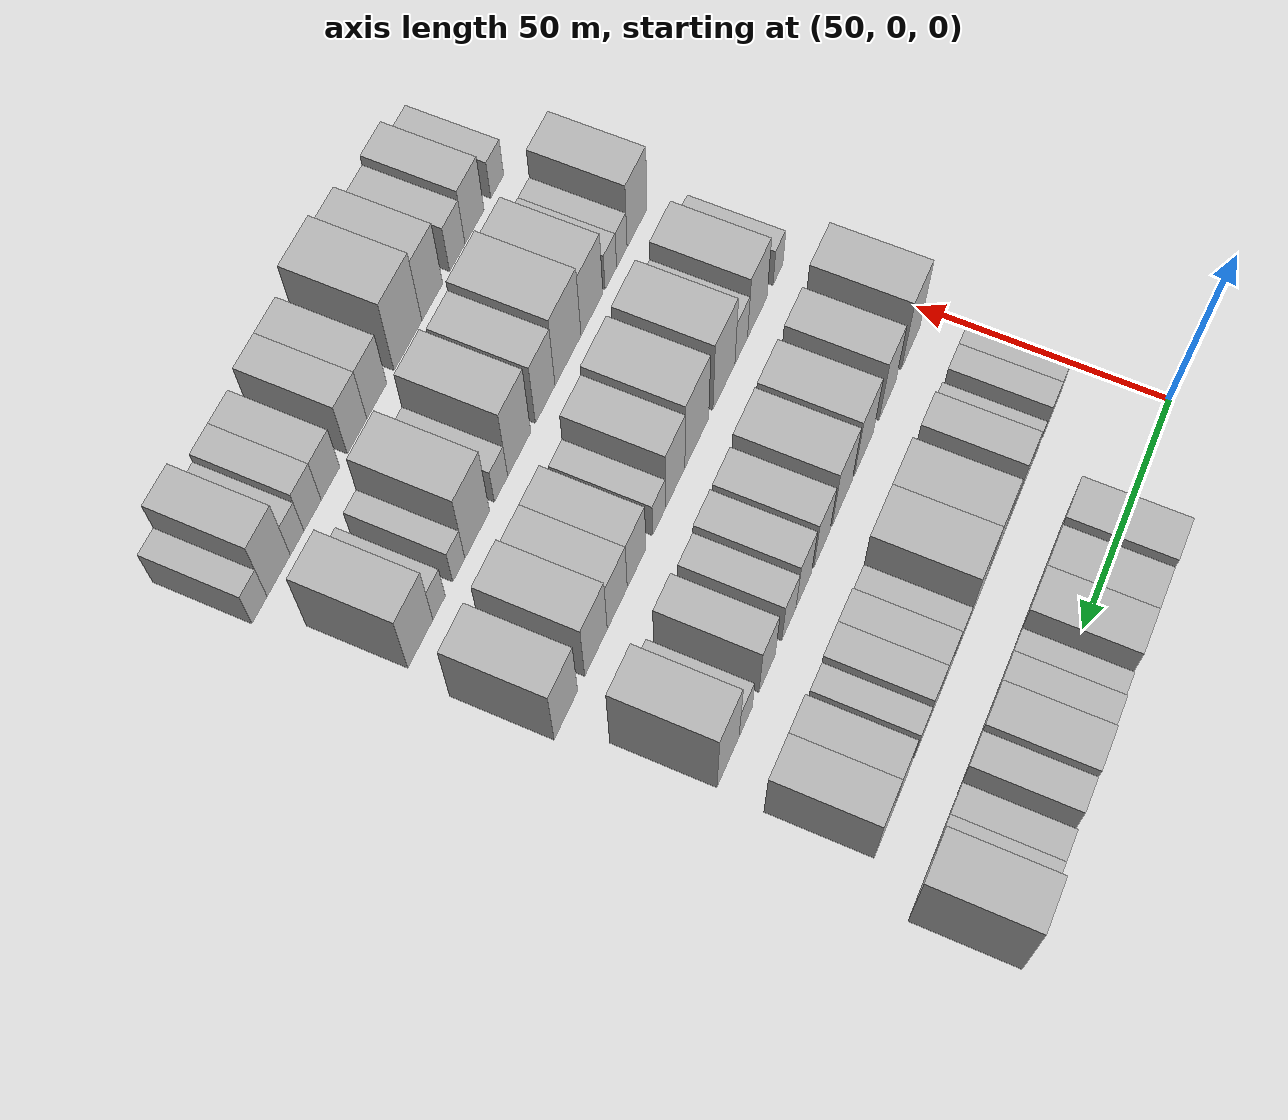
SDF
<sdf version="1.6">
 <world name="default">
  <model name="building_56">
   <static>1</static>
   <pose>50.0000 36.9131 0 0.000000 0.000000 0.000000</pose>
   <link name="link">
    <pose>0 0 10.50 0 0 0</pose>
    <collision name="collision"><geometry><box><size>20.0000 8.4661 21.0000</size></box></geometry></collision>
    <visual name="visual">
     <cast_shadows>0</cast_shadows>
     <geometry><box><size>20.0000 8.4661 21.0000</size></box></geometry>
     <material>
      <script>
       <uri>model://HANNAS_wall/materials/scripts</uri>
       <uri>model://HANNAS_wall/materials/textures</uri>
       <name>vrc/HANNAS_wall</name>
      </script>
     </material>
    </visual>
   </link>
  </model>
  <model name="building_57">
   <static>1</static>
   <pose>50.0000 45.2574 0 0.000000 0.000000 0.000000</pose>
   <link name="link">
    <pose>0 0 9.00 0 0 0</pose>
    <collision name="collision"><geometry><box><size>20.0000 8.2225 18.0000</size></box></geometry></collision>
    <visual name="visual">
     <cast_shadows>0</cast_shadows>
     <geometry><box><size>20.0000 8.2225 18.0000</size></box></geometry>
     <material>
      <script>
       <uri>model://HANNAS_wall/materials/scripts</uri>
       <uri>model://HANNAS_wall/materials/textures</uri>
       <name>vrc/HANNAS_wall</name>
      </script>
     </material>
    </visual>
   </link>
  </model>
  <model name="building_58">
   <static>1</static>
   <pose>50.0000 53.8250 0 0.000000 0.000000 0.000000</pose>
   <link name="link">
    <pose>0 0 9.00 0 0 0</pose>
    <collision name="collision"><geometry><box><size>20.0000 8.9127 18.0000</size></box></geometry></collision>
    <visual name="visual">
     <cast_shadows>0</cast_shadows>
     <geometry><box><size>20.0000 8.9127 18.0000</size></box></geometry>
     <material>
      <script>
       <uri>model://HANNAS_wall/materials/scripts</uri>
       <uri>model://HANNAS_wall/materials/textures</uri>
       <name>vrc/HANNAS_wall</name>
      </script>
     </material>
    </visual>
   </link>
  </model>
  <model name="building_59">
   <static>1</static>
   <pose>50.0000 62.1309 0 0.000000 0.000000 0.000000</pose>
   <link name="link">
    <pose>0 0 6.00 0 0 0</pose>
    <collision name="collision"><geometry><box><size>20.0000 5.6992 12.0000</size></box></geometry></collision>
    <visual name="visual">
     <cast_shadows>0</cast_shadows>
     <geometry><box><size>20.0000 5.6992 12.0000</size></box></geometry>
     <material>
      <script>
       <uri>model://HANNAS_wall/materials/scripts</uri>
       <uri>model://HANNAS_wall/materials/textures</uri>
       <name>vrc/HANNAS_wall</name>
      </script>
     </material>
    </visual>
   </link>
  </model>
  <model name="building_60">
   <static>1</static>
   <pose>50.0000 68.4200 0 0.000000 0.000000 0.000000</pose>
   <link name="link">
    <pose>0 0 7.50 0 0 0</pose>
    <collision name="collision"><geometry><box><size>20.0000 6.8791 15.0000</size></box></geometry></collision>
    <visual name="visual">
     <cast_shadows>0</cast_shadows>
     <geometry><box><size>20.0000 6.8791 15.0000</size></box></geometry>
     <material>
      <script>
       <uri>model://HANNAS_wall/materials/scripts</uri>
       <uri>model://HANNAS_wall/materials/textures</uri>
       <name>vrc/HANNAS_wall</name>
      </script>
     </material>
    </visual>
   </link>
  </model>
  <model name="building_61">
   <static>1</static>
   <pose>50.0000 76.1086 0 0.000000 0.000000 0.000000</pose>
   <link name="link">
    <pose>0 0 9.00 0 0 0</pose>
    <collision name="collision"><geometry><box><size>20.0000 8.4981 18.0000</size></box></geometry></collision>
    <visual name="visual">
     <cast_shadows>0</cast_shadows>
     <geometry><box><size>20.0000 8.4981 18.0000</size></box></geometry>
     <material>
      <script>
       <uri>model://HANNAS_wall/materials/scripts</uri>
       <uri>model://HANNAS_wall/materials/textures</uri>
       <name>vrc/HANNAS_wall</name>
      </script>
     </material>
    </visual>
   </link>
  </model>
  <model name="building_62">
   <static>1</static>
   <pose>50.0000 83.6781 0 0.000000 0.000000 0.000000</pose>
   <link name="link">
    <pose>0 0 7.50 0 0 0</pose>
    <collision name="collision"><geometry><box><size>20.0000 6.6409 15.0000</size></box></geometry></collision>
    <visual name="visual">
     <cast_shadows>0</cast_shadows>
     <geometry><box><size>20.0000 6.6409 15.0000</size></box></geometry>
     <material>
      <script>
       <uri>model://HANNAS_wall/materials/scripts</uri>
       <uri>model://HANNAS_wall/materials/textures</uri>
       <name>vrc/HANNAS_wall</name>
      </script>
     </material>
    </visual>
   </link>
  </model>
  <model name="building_63">
   <static>1</static>
   <pose>50.0000 91.9282 0 0.000000 0.000000 0.000000</pose>
   <link name="link">
    <pose>0 0 6.00 0 0 0</pose>
    <collision name="collision"><geometry><box><size>20.0000 5.8591 12.0000</size></box></geometry></collision>
    <visual name="visual">
     <cast_shadows>0</cast_shadows>
     <geometry><box><size>20.0000 5.8591 12.0000</size></box></geometry>
     <material>
      <script>
       <uri>model://HANNAS_wall/materials/scripts</uri>
       <uri>model://HANNAS_wall/materials/textures</uri>
       <name>vrc/HANNAS_wall</name>
      </script>
     </material>
    </visual>
   </link>
  </model>
  <model name="building_64">
   <static>1</static>
   <pose>50.0000 97.8482 0 0.000000 0.000000 0.000000</pose>
   <link name="link">
    <pose>0 0 6.00 0 0 0</pose>
    <collision name="collision"><geometry><box><size>20.0000 5.9810 12.0000</size></box></geometry></collision>
    <visual name="visual">
     <cast_shadows>0</cast_shadows>
     <geometry><box><size>20.0000 5.9810 12.0000</size></box></geometry>
     <material>
      <script>
       <uri>model://HANNAS_wall/materials/scripts</uri>
       <uri>model://HANNAS_wall/materials/textures</uri>
       <name>vrc/HANNAS_wall</name>
      </script>
     </material>
    </visual>
   </link>
  </model>
  <model name="building_65">
   <static>1</static>
   <pose>50.0000 105.8991 0 0.000000 0.000000 0.000000</pose>
   <link name="link">
    <pose>0 0 12.00 0 0 0</pose>
    <collision name="collision"><geometry><box><size>20.0000 10.1208 24.0000</size></box></geometry></collision>
    <visual name="visual">
     <cast_shadows>0</cast_shadows>
     <geometry><box><size>20.0000 10.1208 24.0000</size></box></geometry>
     <material>
      <script>
       <uri>model://HANNAS_wall/materials/scripts</uri>
       <uri>model://HANNAS_wall/materials/textures</uri>
       <name>vrc/HANNAS_wall</name>
      </script>
     </material>
    </visual>
   </link>
  </model>
  <model name="building_162">
   <static>1</static>
   <pose>79.0000 8.8495 0 0.000000 0.000000 0.000000</pose>
   <link name="link">
    <pose>0 0 6.00 0 0 0</pose>
    <collision name="collision"><geometry><box><size>20.0000 4.9126 12.0000</size></box></geometry></collision>
    <visual name="visual">
     <cast_shadows>0</cast_shadows>
     <geometry><box><size>20.0000 4.9126 12.0000</size></box></geometry>
     <material>
      <script>
       <uri>model://HANNAS_wall/materials/scripts</uri>
       <uri>model://HANNAS_wall/materials/textures</uri>
       <name>vrc/HANNAS_wall</name>
      </script>
     </material>
    </visual>
   </link>
  </model>
  <model name="building_163">
   <static>1</static>
   <pose>79.0000 14.1832 0 0.000000 0.000000 0.000000</pose>
   <link name="link">
    <pose>0 0 6.00 0 0 0</pose>
    <collision name="collision"><geometry><box><size>20.0000 5.7546 12.0000</size></box></geometry></collision>
    <visual name="visual">
     <cast_shadows>0</cast_shadows>
     <geometry><box><size>20.0000 5.7546 12.0000</size></box></geometry>
     <material>
      <script>
       <uri>model://HANNAS_wall/materials/scripts</uri>
       <uri>model://HANNAS_wall/materials/textures</uri>
       <name>vrc/HANNAS_wall</name>
      </script>
     </material>
    </visual>
   </link>
  </model>
  <model name="building_164">
   <static>1</static>
   <pose>79.0000 22.8513 0 0.000000 0.000000 0.000000</pose>
   <link name="link">
    <pose>0 0 6.00 0 0 0</pose>
    <collision name="collision"><geometry><box><size>20.0000 5.5816 12.0000</size></box></geometry></collision>
    <visual name="visual">
     <cast_shadows>0</cast_shadows>
     <geometry><box><size>20.0000 5.5816 12.0000</size></box></geometry>
     <material>
      <script>
       <uri>model://HANNAS_wall/materials/scripts</uri>
       <uri>model://HANNAS_wall/materials/textures</uri>
       <name>vrc/HANNAS_wall</name>
      </script>
     </material>
    </visual>
   </link>
  </model>
  <model name="building_165">
   <static>1</static>
   <pose>79.0000 29.2637 0 0.000000 0.000000 0.000000</pose>
   <link name="link">
    <pose>0 0 9.00 0 0 0</pose>
    <collision name="collision"><geometry><box><size>20.0000 7.2432 18.0000</size></box></geometry></collision>
    <visual name="visual">
     <cast_shadows>0</cast_shadows>
     <geometry><box><size>20.0000 7.2432 18.0000</size></box></geometry>
     <material>
      <script>
       <uri>model://HANNAS_wall/materials/scripts</uri>
       <uri>model://HANNAS_wall/materials/textures</uri>
       <name>vrc/HANNAS_wall</name>
      </script>
     </material>
    </visual>
   </link>
  </model>
  <model name="building_166">
   <static>1</static>
   <pose>79.0000 35.8834 0 0.000000 0.000000 0.000000</pose>
   <link name="link">
    <pose>0 0 6.00 0 0 0</pose>
    <collision name="collision"><geometry><box><size>20.0000 5.9963 12.0000</size></box></geometry></collision>
    <visual name="visual">
     <cast_shadows>0</cast_shadows>
     <geometry><box><size>20.0000 5.9963 12.0000</size></box></geometry>
     <material>
      <script>
       <uri>model://HANNAS_wall/materials/scripts</uri>
       <uri>model://HANNAS_wall/materials/textures</uri>
       <name>vrc/HANNAS_wall</name>
      </script>
     </material>
    </visual>
   </link>
  </model>
  <model name="building_167">
   <static>1</static>
   <pose>79.0000 43.7015 0 0.000000 0.000000 0.000000</pose>
   <link name="link">
    <pose>0 0 12.00 0 0 0</pose>
    <collision name="collision"><geometry><box><size>20.0000 9.6399 24.0000</size></box></geometry></collision>
    <visual name="visual">
     <cast_shadows>0</cast_shadows>
     <geometry><box><size>20.0000 9.6399 24.0000</size></box></geometry>
     <material>
      <script>
       <uri>model://HANNAS_wall/materials/scripts</uri>
       <uri>model://HANNAS_wall/materials/textures</uri>
       <name>vrc/HANNAS_wall</name>
      </script>
     </material>
    </visual>
   </link>
  </model>
  <model name="building_168">
   <static>1</static>
   <pose>79.0000 53.7964 0 0.000000 0.000000 0.000000</pose>
   <link name="link">
    <pose>0 0 12.00 0 0 0</pose>
    <collision name="collision"><geometry><box><size>20.0000 10.5500 24.0000</size></box></geometry></collision>
    <visual name="visual">
     <cast_shadows>0</cast_shadows>
     <geometry><box><size>20.0000 10.5500 24.0000</size></box></geometry>
     <material>
      <script>
       <uri>model://HANNAS_wall/materials/scripts</uri>
       <uri>model://HANNAS_wall/materials/textures</uri>
       <name>vrc/HANNAS_wall</name>
      </script>
     </material>
    </visual>
   </link>
  </model>
  <model name="building_169">
   <static>1</static>
   <pose>79.0000 61.6285 0 0.000000 0.000000 0.000000</pose>
   <link name="link">
    <pose>0 0 6.00 0 0 0</pose>
    <collision name="collision"><geometry><box><size>20.0000 5.1140 12.0000</size></box></geometry></collision>
    <visual name="visual">
     <cast_shadows>0</cast_shadows>
     <geometry><box><size>20.0000 5.1140 12.0000</size></box></geometry>
     <material>
      <script>
       <uri>model://HANNAS_wall/materials/scripts</uri>
       <uri>model://HANNAS_wall/materials/textures</uri>
       <name>vrc/HANNAS_wall</name>
      </script>
     </material>
    </visual>
   </link>
  </model>
  <model name="building_170">
   <static>1</static>
   <pose>79.0000 68.5102 0 0.000000 0.000000 0.000000</pose>
   <link name="link">
    <pose>0 0 7.50 0 0 0</pose>
    <collision name="collision"><geometry><box><size>20.0000 6.6495 15.0000</size></box></geometry></collision>
    <visual name="visual">
     <cast_shadows>0</cast_shadows>
     <geometry><box><size>20.0000 6.6495 15.0000</size></box></geometry>
     <material>
      <script>
       <uri>model://HANNAS_wall/materials/scripts</uri>
       <uri>model://HANNAS_wall/materials/textures</uri>
       <name>vrc/HANNAS_wall</name>
      </script>
     </material>
    </visual>
   </link>
  </model>
  <model name="building_171">
   <static>1</static>
   <pose>79.0000 75.2720 0 0.000000 0.000000 0.000000</pose>
   <link name="link">
    <pose>0 0 7.50 0 0 0</pose>
    <collision name="collision"><geometry><box><size>20.0000 6.8742 15.0000</size></box></geometry></collision>
    <visual name="visual">
     <cast_shadows>0</cast_shadows>
     <geometry><box><size>20.0000 6.8742 15.0000</size></box></geometry>
     <material>
      <script>
       <uri>model://HANNAS_wall/materials/scripts</uri>
       <uri>model://HANNAS_wall/materials/textures</uri>
       <name>vrc/HANNAS_wall</name>
      </script>
     </material>
    </visual>
   </link>
  </model>
  <model name="building_172">
   <static>1</static>
   <pose>79.0000 81.4642 0 0.000000 0.000000 0.000000</pose>
   <link name="link">
    <pose>0 0 6.00 0 0 0</pose>
    <collision name="collision"><geometry><box><size>20.0000 5.5101 12.0000</size></box></geometry></collision>
    <visual name="visual">
     <cast_shadows>0</cast_shadows>
     <geometry><box><size>20.0000 5.5101 12.0000</size></box></geometry>
     <material>
      <script>
       <uri>model://HANNAS_wall/materials/scripts</uri>
       <uri>model://HANNAS_wall/materials/textures</uri>
       <name>vrc/HANNAS_wall</name>
      </script>
     </material>
    </visual>
   </link>
  </model>
  <model name="building_173">
   <static>1</static>
   <pose>79.0000 90.8533 0 0.000000 0.000000 0.000000</pose>
   <link name="link">
    <pose>0 0 9.00 0 0 0</pose>
    <collision name="collision"><geometry><box><size>20.0000 7.2681 18.0000</size></box></geometry></collision>
    <visual name="visual">
     <cast_shadows>0</cast_shadows>
     <geometry><box><size>20.0000 7.2681 18.0000</size></box></geometry>
     <material>
      <script>
       <uri>model://HANNAS_wall/materials/scripts</uri>
       <uri>model://HANNAS_wall/materials/textures</uri>
       <name>vrc/HANNAS_wall</name>
      </script>
     </material>
    </visual>
   </link>
  </model>
  <model name="building_174">
   <static>1</static>
   <pose>79.0000 98.8572 0 0.000000 0.000000 0.000000</pose>
   <link name="link">
    <pose>0 0 9.00 0 0 0</pose>
    <collision name="collision"><geometry><box><size>20.0000 8.7397 18.0000</size></box></geometry></collision>
    <visual name="visual">
     <cast_shadows>0</cast_shadows>
     <geometry><box><size>20.0000 8.7397 18.0000</size></box></geometry>
     <material>
      <script>
       <uri>model://HANNAS_wall/materials/scripts</uri>
       <uri>model://HANNAS_wall/materials/textures</uri>
       <name>vrc/HANNAS_wall</name>
      </script>
     </material>
    </visual>
   </link>
  </model>
  <model name="building_270">
   <static>1</static>
   <pose>108.0000 9.0043 0 0.000000 0.000000 0.000000</pose>
   <link name="link">
    <pose>0 0 12.00 0 0 0</pose>
    <collision name="collision"><geometry><box><size>20.0000 9.8148 24.0000</size></box></geometry></collision>
    <visual name="visual">
     <cast_shadows>0</cast_shadows>
     <geometry><box><size>20.0000 9.8148 24.0000</size></box></geometry>
     <material>
      <script>
       <uri>model://HANNAS_wall/materials/scripts</uri>
       <uri>model://HANNAS_wall/materials/textures</uri>
       <name>vrc/HANNAS_wall</name>
      </script>
     </material>
    </visual>
   </link>
  </model>
  <model name="building_271">
   <static>1</static>
   <pose>108.0000 21.2413 0 0.000000 0.000000 0.000000</pose>
   <link name="link">
    <pose>0 0 10.50 0 0 0</pose>
    <collision name="collision"><geometry><box><size>20.0000 8.6592 21.0000</size></box></geometry></collision>
    <visual name="visual">
     <cast_shadows>0</cast_shadows>
     <geometry><box><size>20.0000 8.6592 21.0000</size></box></geometry>
     <material>
      <script>
       <uri>model://HANNAS_wall/materials/scripts</uri>
       <uri>model://HANNAS_wall/materials/textures</uri>
       <name>vrc/HANNAS_wall</name>
      </script>
     </material>
    </visual>
   </link>
  </model>
  <model name="building_272">
   <static>1</static>
   <pose>108.0000 33.3594 0 0.000000 0.000000 0.000000</pose>
   <link name="link">
    <pose>0 0 10.50 0 0 0</pose>
    <collision name="collision"><geometry><box><size>20.0000 9.5769 21.0000</size></box></geometry></collision>
    <visual name="visual">
     <cast_shadows>0</cast_shadows>
     <geometry><box><size>20.0000 9.5769 21.0000</size></box></geometry>
     <material>
      <script>
       <uri>model://HANNAS_wall/materials/scripts</uri>
       <uri>model://HANNAS_wall/materials/textures</uri>
       <name>vrc/HANNAS_wall</name>
      </script>
     </material>
    </visual>
   </link>
  </model>
  <model name="building_273">
   <static>1</static>
   <pose>108.0000 44.1612 0 0.000000 0.000000 0.000000</pose>
   <link name="link">
    <pose>0 0 10.50 0 0 0</pose>
    <collision name="collision"><geometry><box><size>20.0000 10.0267 21.0000</size></box></geometry></collision>
    <visual name="visual">
     <cast_shadows>0</cast_shadows>
     <geometry><box><size>20.0000 10.0267 21.0000</size></box></geometry>
     <material>
      <script>
       <uri>model://HANNAS_wall/materials/scripts</uri>
       <uri>model://HANNAS_wall/materials/textures</uri>
       <name>vrc/HANNAS_wall</name>
      </script>
     </material>
    </visual>
   </link>
  </model>
  <model name="building_274">
   <static>1</static>
   <pose>108.0000 54.1540 0 0.000000 0.000000 0.000000</pose>
   <link name="link">
    <pose>0 0 9.00 0 0 0</pose>
    <collision name="collision"><geometry><box><size>20.0000 7.9589 18.0000</size></box></geometry></collision>
    <visual name="visual">
     <cast_shadows>0</cast_shadows>
     <geometry><box><size>20.0000 7.9589 18.0000</size></box></geometry>
     <material>
      <script>
       <uri>model://HANNAS_wall/materials/scripts</uri>
       <uri>model://HANNAS_wall/materials/textures</uri>
       <name>vrc/HANNAS_wall</name>
      </script>
     </material>
    </visual>
   </link>
  </model>
  <model name="building_275">
   <static>1</static>
   <pose>108.0000 62.8542 0 0.000000 0.000000 0.000000</pose>
   <link name="link">
    <pose>0 0 9.00 0 0 0</pose>
    <collision name="collision"><geometry><box><size>20.0000 7.4416 18.0000</size></box></geometry></collision>
    <visual name="visual">
     <cast_shadows>0</cast_shadows>
     <geometry><box><size>20.0000 7.4416 18.0000</size></box></geometry>
     <material>
      <script>
       <uri>model://HANNAS_wall/materials/scripts</uri>
       <uri>model://HANNAS_wall/materials/textures</uri>
       <name>vrc/HANNAS_wall</name>
      </script>
     </material>
    </visual>
   </link>
  </model>
  <model name="building_276">
   <static>1</static>
   <pose>108.0000 69.8997 0 0.000000 0.000000 0.000000</pose>
   <link name="link">
    <pose>0 0 7.50 0 0 0</pose>
    <collision name="collision"><geometry><box><size>20.0000 6.6494 15.0000</size></box></geometry></collision>
    <visual name="visual">
     <cast_shadows>0</cast_shadows>
     <geometry><box><size>20.0000 6.6494 15.0000</size></box></geometry>
     <material>
      <script>
       <uri>model://HANNAS_wall/materials/scripts</uri>
       <uri>model://HANNAS_wall/materials/textures</uri>
       <name>vrc/HANNAS_wall</name>
      </script>
     </material>
    </visual>
   </link>
  </model>
  <model name="building_277">
   <static>1</static>
   <pose>108.0000 79.9602 0 0.000000 0.000000 0.000000</pose>
   <link name="link">
    <pose>0 0 9.00 0 0 0</pose>
    <collision name="collision"><geometry><box><size>20.0000 7.4715 18.0000</size></box></geometry></collision>
    <visual name="visual">
     <cast_shadows>0</cast_shadows>
     <geometry><box><size>20.0000 7.4715 18.0000</size></box></geometry>
     <material>
      <script>
       <uri>model://HANNAS_wall/materials/scripts</uri>
       <uri>model://HANNAS_wall/materials/textures</uri>
       <name>vrc/HANNAS_wall</name>
      </script>
     </material>
    </visual>
   </link>
  </model>
  <model name="building_278">
   <static>1</static>
   <pose>108.0000 89.6783 0 0.000000 0.000000 0.000000</pose>
   <link name="link">
    <pose>0 0 6.00 0 0 0</pose>
    <collision name="collision"><geometry><box><size>20.0000 5.9648 12.0000</size></box></geometry></collision>
    <visual name="visual">
     <cast_shadows>0</cast_shadows>
     <geometry><box><size>20.0000 5.9648 12.0000</size></box></geometry>
     <material>
      <script>
       <uri>model://HANNAS_wall/materials/scripts</uri>
       <uri>model://HANNAS_wall/materials/textures</uri>
       <name>vrc/HANNAS_wall</name>
      </script>
     </material>
    </visual>
   </link>
  </model>
  <model name="building_279">
   <static>1</static>
   <pose>108.0000 97.5534 0 0.000000 0.000000 0.000000</pose>
   <link name="link">
    <pose>0 0 12.00 0 0 0</pose>
    <collision name="collision"><geometry><box><size>20.0000 9.7855 24.0000</size></box></geometry></collision>
    <visual name="visual">
     <cast_shadows>0</cast_shadows>
     <geometry><box><size>20.0000 9.7855 24.0000</size></box></geometry>
     <material>
      <script>
       <uri>model://HANNAS_wall/materials/scripts</uri>
       <uri>model://HANNAS_wall/materials/textures</uri>
       <name>vrc/HANNAS_wall</name>
      </script>
     </material>
    </visual>
   </link>
  </model>
  <model name="building_385">
   <static>1</static>
   <pose>137.0000 4.0232 0 0.000000 0.000000 0.000000</pose>
   <link name="link">
    <pose>0 0 6.00 0 0 0</pose>
    <collision name="collision"><geometry><box><size>20.0000 4.9820 12.0000</size></box></geometry></collision>
    <visual name="visual">
     <cast_shadows>0</cast_shadows>
     <geometry><box><size>20.0000 4.9820 12.0000</size></box></geometry>
     <material>
      <script>
       <uri>model://HANNAS_wall/materials/scripts</uri>
       <uri>model://HANNAS_wall/materials/textures</uri>
       <name>vrc/HANNAS_wall</name>
      </script>
     </material>
    </visual>
   </link>
  </model>
  <model name="building_386">
   <static>1</static>
   <pose>137.0000 14.3267 0 0.000000 0.000000 0.000000</pose>
   <link name="link">
    <pose>0 0 10.50 0 0 0</pose>
    <collision name="collision"><geometry><box><size>20.0000 9.6249 21.0000</size></box></geometry></collision>
    <visual name="visual">
     <cast_shadows>0</cast_shadows>
     <geometry><box><size>20.0000 9.6249 21.0000</size></box></geometry>
     <material>
      <script>
       <uri>model://HANNAS_wall/materials/scripts</uri>
       <uri>model://HANNAS_wall/materials/textures</uri>
       <name>vrc/HANNAS_wall</name>
      </script>
     </material>
    </visual>
   </link>
  </model>
  <model name="building_387">
   <static>1</static>
   <pose>137.0000 22.2247 0 0.000000 0.000000 0.000000</pose>
   <link name="link">
    <pose>0 0 7.50 0 0 0</pose>
    <collision name="collision"><geometry><box><size>20.0000 6.1713 15.0000</size></box></geometry></collision>
    <visual name="visual">
     <cast_shadows>0</cast_shadows>
     <geometry><box><size>20.0000 6.1713 15.0000</size></box></geometry>
     <material>
      <script>
       <uri>model://HANNAS_wall/materials/scripts</uri>
       <uri>model://HANNAS_wall/materials/textures</uri>
       <name>vrc/HANNAS_wall</name>
      </script>
     </material>
    </visual>
   </link>
  </model>
  <model name="building_388">
   <static>1</static>
   <pose>137.0000 30.5991 0 0.000000 0.000000 0.000000</pose>
   <link name="link">
    <pose>0 0 12.00 0 0 0</pose>
    <collision name="collision"><geometry><box><size>20.0000 10.5775 24.0000</size></box></geometry></collision>
    <visual name="visual">
     <cast_shadows>0</cast_shadows>
     <geometry><box><size>20.0000 10.5775 24.0000</size></box></geometry>
     <material>
      <script>
       <uri>model://HANNAS_wall/materials/scripts</uri>
       <uri>model://HANNAS_wall/materials/textures</uri>
       <name>vrc/HANNAS_wall</name>
      </script>
     </material>
    </visual>
   </link>
  </model>
  <model name="building_389">
   <static>1</static>
   <pose>137.0000 43.4403 0 0.000000 0.000000 0.000000</pose>
   <link name="link">
    <pose>0 0 12.00 0 0 0</pose>
    <collision name="collision"><geometry><box><size>20.0000 11.1048 24.0000</size></box></geometry></collision>
    <visual name="visual">
     <cast_shadows>0</cast_shadows>
     <geometry><box><size>20.0000 11.1048 24.0000</size></box></geometry>
     <material>
      <script>
       <uri>model://HANNAS_wall/materials/scripts</uri>
       <uri>model://HANNAS_wall/materials/textures</uri>
       <name>vrc/HANNAS_wall</name>
      </script>
     </material>
    </visual>
   </link>
  </model>
  <model name="building_390">
   <static>1</static>
   <pose>137.0000 53.4198 0 0.000000 0.000000 0.000000</pose>
   <link name="link">
    <pose>0 0 10.50 0 0 0</pose>
    <collision name="collision"><geometry><box><size>20.0000 8.8540 21.0000</size></box></geometry></collision>
    <visual name="visual">
     <cast_shadows>0</cast_shadows>
     <geometry><box><size>20.0000 8.8540 21.0000</size></box></geometry>
     <material>
      <script>
       <uri>model://HANNAS_wall/materials/scripts</uri>
       <uri>model://HANNAS_wall/materials/textures</uri>
       <name>vrc/HANNAS_wall</name>
      </script>
     </material>
    </visual>
   </link>
  </model>
  <model name="building_391">
   <static>1</static>
   <pose>137.0000 60.7643 0 0.000000 0.000000 0.000000</pose>
   <link name="link">
    <pose>0 0 6.00 0 0 0</pose>
    <collision name="collision"><geometry><box><size>20.0000 5.8350 12.0000</size></box></geometry></collision>
    <visual name="visual">
     <cast_shadows>0</cast_shadows>
     <geometry><box><size>20.0000 5.8350 12.0000</size></box></geometry>
     <material>
      <script>
       <uri>model://HANNAS_wall/materials/scripts</uri>
       <uri>model://HANNAS_wall/materials/textures</uri>
       <name>vrc/HANNAS_wall</name>
      </script>
     </material>
    </visual>
   </link>
  </model>
  <model name="building_392">
   <static>1</static>
   <pose>137.0000 70.7761 0 0.000000 0.000000 0.000000</pose>
   <link name="link">
    <pose>0 0 9.00 0 0 0</pose>
    <collision name="collision"><geometry><box><size>20.0000 8.1887 18.0000</size></box></geometry></collision>
    <visual name="visual">
     <cast_shadows>0</cast_shadows>
     <geometry><box><size>20.0000 8.1887 18.0000</size></box></geometry>
     <material>
      <script>
       <uri>model://HANNAS_wall/materials/scripts</uri>
       <uri>model://HANNAS_wall/materials/textures</uri>
       <name>vrc/HANNAS_wall</name>
      </script>
     </material>
    </visual>
   </link>
  </model>
  <model name="building_393">
   <static>1</static>
   <pose>137.0000 79.1968 0 0.000000 0.000000 0.000000</pose>
   <link name="link">
    <pose>0 0 9.00 0 0 0</pose>
    <collision name="collision"><geometry><box><size>20.0000 8.6526 18.0000</size></box></geometry></collision>
    <visual name="visual">
     <cast_shadows>0</cast_shadows>
     <geometry><box><size>20.0000 8.6526 18.0000</size></box></geometry>
     <material>
      <script>
       <uri>model://HANNAS_wall/materials/scripts</uri>
       <uri>model://HANNAS_wall/materials/textures</uri>
       <name>vrc/HANNAS_wall</name>
      </script>
     </material>
    </visual>
   </link>
  </model>
  <model name="building_394">
   <static>1</static>
   <pose>137.0000 88.3051 0 0.000000 0.000000 0.000000</pose>
   <link name="link">
    <pose>0 0 10.50 0 0 0</pose>
    <collision name="collision"><geometry><box><size>20.0000 9.5639 21.0000</size></box></geometry></collision>
    <visual name="visual">
     <cast_shadows>0</cast_shadows>
     <geometry><box><size>20.0000 9.5639 21.0000</size></box></geometry>
     <material>
      <script>
       <uri>model://HANNAS_wall/materials/scripts</uri>
       <uri>model://HANNAS_wall/materials/textures</uri>
       <name>vrc/HANNAS_wall</name>
      </script>
     </material>
    </visual>
   </link>
  </model>
  <model name="building_395">
   <static>1</static>
   <pose>137.0000 100.9347 0 0.000000 0.000000 0.000000</pose>
   <link name="link">
    <pose>0 0 10.50 0 0 0</pose>
    <collision name="collision"><geometry><box><size>20.0000 9.6954 21.0000</size></box></geometry></collision>
    <visual name="visual">
     <cast_shadows>0</cast_shadows>
     <geometry><box><size>20.0000 9.6954 21.0000</size></box></geometry>
     <material>
      <script>
       <uri>model://HANNAS_wall/materials/scripts</uri>
       <uri>model://HANNAS_wall/materials/textures</uri>
       <name>vrc/HANNAS_wall</name>
      </script>
     </material>
    </visual>
   </link>
  </model>
  <model name="building_505">
   <static>1</static>
   <pose>166.0000 5.1262 0 0.000000 0.000000 0.000000</pose>
   <link name="link">
    <pose>0 0 10.50 0 0 0</pose>
    <collision name="collision"><geometry><box><size>20.0000 9.4870 21.0000</size></box></geometry></collision>
    <visual name="visual">
     <cast_shadows>0</cast_shadows>
     <geometry><box><size>20.0000 9.4870 21.0000</size></box></geometry>
     <material>
      <script>
       <uri>model://HANNAS_wall/materials/scripts</uri>
       <uri>model://HANNAS_wall/materials/textures</uri>
       <name>vrc/HANNAS_wall</name>
      </script>
     </material>
    </visual>
   </link>
  </model>
  <model name="building_506">
   <static>1</static>
   <pose>166.0000 12.3390 0 0.000000 0.000000 0.000000</pose>
   <link name="link">
    <pose>0 0 6.00 0 0 0</pose>
    <collision name="collision"><geometry><box><size>20.0000 4.9386 12.0000</size></box></geometry></collision>
    <visual name="visual">
     <cast_shadows>0</cast_shadows>
     <geometry><box><size>20.0000 4.9386 12.0000</size></box></geometry>
     <material>
      <script>
       <uri>model://HANNAS_wall/materials/scripts</uri>
       <uri>model://HANNAS_wall/materials/textures</uri>
       <name>vrc/HANNAS_wall</name>
      </script>
     </material>
    </visual>
   </link>
  </model>
  <model name="building_507">
   <static>1</static>
   <pose>166.0000 17.5006 0 0.000000 0.000000 0.000000</pose>
   <link name="link">
    <pose>0 0 6.00 0 0 0</pose>
    <collision name="collision"><geometry><box><size>20.0000 5.3846 12.0000</size></box></geometry></collision>
    <visual name="visual">
     <cast_shadows>0</cast_shadows>
     <geometry><box><size>20.0000 5.3846 12.0000</size></box></geometry>
     <material>
      <script>
       <uri>model://HANNAS_wall/materials/scripts</uri>
       <uri>model://HANNAS_wall/materials/textures</uri>
       <name>vrc/HANNAS_wall</name>
      </script>
     </material>
    </visual>
   </link>
  </model>
  <model name="building_508">
   <static>1</static>
   <pose>166.0000 26.1978 0 0.000000 0.000000 0.000000</pose>
   <link name="link">
    <pose>0 0 10.50 0 0 0</pose>
    <collision name="collision"><geometry><box><size>20.0000 10.0098 21.0000</size></box></geometry></collision>
    <visual name="visual">
     <cast_shadows>0</cast_shadows>
     <geometry><box><size>20.0000 10.0098 21.0000</size></box></geometry>
     <material>
      <script>
       <uri>model://HANNAS_wall/materials/scripts</uri>
       <uri>model://HANNAS_wall/materials/textures</uri>
       <name>vrc/HANNAS_wall</name>
      </script>
     </material>
    </visual>
   </link>
  </model>
  <model name="building_509">
   <static>1</static>
   <pose>166.0000 37.0403 0 0.000000 0.000000 0.000000</pose>
   <link name="link">
    <pose>0 0 12.00 0 0 0</pose>
    <collision name="collision"><geometry><box><size>20.0000 11.6752 24.0000</size></box></geometry></collision>
    <visual name="visual">
     <cast_shadows>0</cast_shadows>
     <geometry><box><size>20.0000 11.6752 24.0000</size></box></geometry>
     <material>
      <script>
       <uri>model://HANNAS_wall/materials/scripts</uri>
       <uri>model://HANNAS_wall/materials/textures</uri>
       <name>vrc/HANNAS_wall</name>
      </script>
     </material>
    </visual>
   </link>
  </model>
  <model name="building_510">
   <static>1</static>
   <pose>166.0000 47.1873 0 0.000000 0.000000 0.000000</pose>
   <link name="link">
    <pose>0 0 10.50 0 0 0</pose>
    <collision name="collision"><geometry><box><size>20.0000 8.6188 21.0000</size></box></geometry></collision>
    <visual name="visual">
     <cast_shadows>0</cast_shadows>
     <geometry><box><size>20.0000 8.6188 21.0000</size></box></geometry>
     <material>
      <script>
       <uri>model://HANNAS_wall/materials/scripts</uri>
       <uri>model://HANNAS_wall/materials/textures</uri>
       <name>vrc/HANNAS_wall</name>
      </script>
     </material>
    </visual>
   </link>
  </model>
  <model name="building_511">
   <static>1</static>
   <pose>166.0000 58.4426 0 0.000000 0.000000 0.000000</pose>
   <link name="link">
    <pose>0 0 12.00 0 0 0</pose>
    <collision name="collision"><geometry><box><size>20.0000 9.8919 24.0000</size></box></geometry></collision>
    <visual name="visual">
     <cast_shadows>0</cast_shadows>
     <geometry><box><size>20.0000 9.8919 24.0000</size></box></geometry>
     <material>
      <script>
       <uri>model://HANNAS_wall/materials/scripts</uri>
       <uri>model://HANNAS_wall/materials/textures</uri>
       <name>vrc/HANNAS_wall</name>
      </script>
     </material>
    </visual>
   </link>
  </model>
  <model name="building_512">
   <static>1</static>
   <pose>166.0000 66.2156 0 0.000000 0.000000 0.000000</pose>
   <link name="link">
    <pose>0 0 6.00 0 0 0</pose>
    <collision name="collision"><geometry><box><size>20.0000 5.6541 12.0000</size></box></geometry></collision>
    <visual name="visual">
     <cast_shadows>0</cast_shadows>
     <geometry><box><size>20.0000 5.6541 12.0000</size></box></geometry>
     <material>
      <script>
       <uri>model://HANNAS_wall/materials/scripts</uri>
       <uri>model://HANNAS_wall/materials/textures</uri>
       <name>vrc/HANNAS_wall</name>
      </script>
     </material>
    </visual>
   </link>
  </model>
  <model name="building_513">
   <static>1</static>
   <pose>166.0000 76.1544 0 0.000000 0.000000 0.000000</pose>
   <link name="link">
    <pose>0 0 12.00 0 0 0</pose>
    <collision name="collision"><geometry><box><size>20.0000 10.2236 24.0000</size></box></geometry></collision>
    <visual name="visual">
     <cast_shadows>0</cast_shadows>
     <geometry><box><size>20.0000 10.2236 24.0000</size></box></geometry>
     <material>
      <script>
       <uri>model://HANNAS_wall/materials/scripts</uri>
       <uri>model://HANNAS_wall/materials/textures</uri>
       <name>vrc/HANNAS_wall</name>
      </script>
     </material>
    </visual>
   </link>
  </model>
  <model name="building_514">
   <static>1</static>
   <pose>166.0000 83.7289 0 0.000000 0.000000 0.000000</pose>
   <link name="link">
    <pose>0 0 6.00 0 0 0</pose>
    <collision name="collision"><geometry><box><size>20.0000 4.9253 12.0000</size></box></geometry></collision>
    <visual name="visual">
     <cast_shadows>0</cast_shadows>
     <geometry><box><size>20.0000 4.9253 12.0000</size></box></geometry>
     <material>
      <script>
       <uri>model://HANNAS_wall/materials/scripts</uri>
       <uri>model://HANNAS_wall/materials/textures</uri>
       <name>vrc/HANNAS_wall</name>
      </script>
     </material>
    </visual>
   </link>
  </model>
  <model name="building_515">
   <static>1</static>
   <pose>166.0000 91.6642 0 0.000000 0.000000 0.000000</pose>
   <link name="link">
    <pose>0 0 6.00 0 0 0</pose>
    <collision name="collision"><geometry><box><size>20.0000 4.9453 12.0000</size></box></geometry></collision>
    <visual name="visual">
     <cast_shadows>0</cast_shadows>
     <geometry><box><size>20.0000 4.9453 12.0000</size></box></geometry>
     <material>
      <script>
       <uri>model://HANNAS_wall/materials/scripts</uri>
       <uri>model://HANNAS_wall/materials/textures</uri>
       <name>vrc/HANNAS_wall</name>
      </script>
     </material>
    </visual>
   </link>
  </model>
  <model name="building_516">
   <static>1</static>
   <pose>166.0000 99.0852 0 0.000000 0.000000 0.000000</pose>
   <link name="link">
    <pose>0 0 10.50 0 0 0</pose>
    <collision name="collision"><geometry><box><size>20.0000 9.8967 21.0000</size></box></geometry></collision>
    <visual name="visual">
     <cast_shadows>0</cast_shadows>
     <geometry><box><size>20.0000 9.8967 21.0000</size></box></geometry>
     <material>
      <script>
       <uri>model://HANNAS_wall/materials/scripts</uri>
       <uri>model://HANNAS_wall/materials/textures</uri>
       <name>vrc/HANNAS_wall</name>
      </script>
     </material>
    </visual>
   </link>
  </model>
  <model name="building_624">
   <static>1</static>
   <pose>195.0000 7.2456 0 0.000000 0.000000 0.000000</pose>
   <link name="link">
    <pose>0 0 6.00 0 0 0</pose>
    <collision name="collision"><geometry><box><size>20.0000 5.8506 12.0000</size></box></geometry></collision>
    <visual name="visual">
     <cast_shadows>0</cast_shadows>
     <geometry><box><size>20.0000 5.8506 12.0000</size></box></geometry>
     <material>
      <script>
       <uri>model://HANNAS_wall/materials/scripts</uri>
       <uri>model://HANNAS_wall/materials/textures</uri>
       <name>vrc/HANNAS_wall</name>
      </script>
     </material>
    </visual>
   </link>
  </model>
  <model name="building_625">
   <static>1</static>
   <pose>195.0000 17.3879 0 0.000000 0.000000 0.000000</pose>
   <link name="link">
    <pose>0 0 9.00 0 0 0</pose>
    <collision name="collision"><geometry><box><size>20.0000 8.4340 18.0000</size></box></geometry></collision>
    <visual name="visual">
     <cast_shadows>0</cast_shadows>
     <geometry><box><size>20.0000 8.4340 18.0000</size></box></geometry>
     <material>
      <script>
       <uri>model://HANNAS_wall/materials/scripts</uri>
       <uri>model://HANNAS_wall/materials/textures</uri>
       <name>vrc/HANNAS_wall</name>
      </script>
     </material>
    </visual>
   </link>
  </model>
  <model name="building_626">
   <static>1</static>
   <pose>195.0000 24.9801 0 0.000000 0.000000 0.000000</pose>
   <link name="link">
    <pose>0 0 7.50 0 0 0</pose>
    <collision name="collision"><geometry><box><size>20.0000 6.7503 15.0000</size></box></geometry></collision>
    <visual name="visual">
     <cast_shadows>0</cast_shadows>
     <geometry><box><size>20.0000 6.7503 15.0000</size></box></geometry>
     <material>
      <script>
       <uri>model://HANNAS_wall/materials/scripts</uri>
       <uri>model://HANNAS_wall/materials/textures</uri>
       <name>vrc/HANNAS_wall</name>
      </script>
     </material>
    </visual>
   </link>
  </model>
  <model name="building_627">
   <static>1</static>
   <pose>195.0000 35.8133 0 0.000000 0.000000 0.000000</pose>
   <link name="link">
    <pose>0 0 10.50 0 0 0</pose>
    <collision name="collision"><geometry><box><size>20.0000 8.9162 21.0000</size></box></geometry></collision>
    <visual name="visual">
     <cast_shadows>0</cast_shadows>
     <geometry><box><size>20.0000 8.9162 21.0000</size></box></geometry>
     <material>
      <script>
       <uri>model://HANNAS_wall/materials/scripts</uri>
       <uri>model://HANNAS_wall/materials/textures</uri>
       <name>vrc/HANNAS_wall</name>
      </script>
     </material>
    </visual>
   </link>
  </model>
  <model name="building_628">
   <static>1</static>
   <pose>195.0000 46.1104 0 0.000000 0.000000 0.000000</pose>
   <link name="link">
    <pose>0 0 12.00 0 0 0</pose>
    <collision name="collision"><geometry><box><size>20.0000 11.6780 24.0000</size></box></geometry></collision>
    <visual name="visual">
     <cast_shadows>0</cast_shadows>
     <geometry><box><size>20.0000 11.6780 24.0000</size></box></geometry>
     <material>
      <script>
       <uri>model://HANNAS_wall/materials/scripts</uri>
       <uri>model://HANNAS_wall/materials/textures</uri>
       <name>vrc/HANNAS_wall</name>
      </script>
     </material>
    </visual>
   </link>
  </model>
  <model name="building_629">
   <static>1</static>
   <pose>195.0000 59.0252 0 0.000000 0.000000 0.000000</pose>
   <link name="link">
    <pose>0 0 9.00 0 0 0</pose>
    <collision name="collision"><geometry><box><size>20.0000 8.1515 18.0000</size></box></geometry></collision>
    <visual name="visual">
     <cast_shadows>0</cast_shadows>
     <geometry><box><size>20.0000 8.1515 18.0000</size></box></geometry>
     <material>
      <script>
       <uri>model://HANNAS_wall/materials/scripts</uri>
       <uri>model://HANNAS_wall/materials/textures</uri>
       <name>vrc/HANNAS_wall</name>
      </script>
     </material>
    </visual>
   </link>
  </model>
  <model name="building_630">
   <static>1</static>
   <pose>195.0000 67.0397 0 0.000000 0.000000 0.000000</pose>
   <link name="link">
    <pose>0 0 9.00 0 0 0</pose>
    <collision name="collision"><geometry><box><size>20.0000 7.8775 18.0000</size></box></geometry></collision>
    <visual name="visual">
     <cast_shadows>0</cast_shadows>
     <geometry><box><size>20.0000 7.8775 18.0000</size></box></geometry>
     <material>
      <script>
       <uri>model://HANNAS_wall/materials/scripts</uri>
       <uri>model://HANNAS_wall/materials/textures</uri>
       <name>vrc/HANNAS_wall</name>
      </script>
     </material>
    </visual>
   </link>
  </model>
  <model name="building_631">
   <static>1</static>
   <pose>195.0000 77.6083 0 0.000000 0.000000 0.000000</pose>
   <link name="link">
    <pose>0 0 7.50 0 0 0</pose>
    <collision name="collision"><geometry><box><size>20.0000 7.2598 15.0000</size></box></geometry></collision>
    <visual name="visual">
     <cast_shadows>0</cast_shadows>
     <geometry><box><size>20.0000 7.2598 15.0000</size></box></geometry>
     <material>
      <script>
       <uri>model://HANNAS_wall/materials/scripts</uri>
       <uri>model://HANNAS_wall/materials/textures</uri>
       <name>vrc/HANNAS_wall</name>
      </script>
     </material>
    </visual>
   </link>
  </model>
  <model name="building_632">
   <static>1</static>
   <pose>195.0000 84.5833 0 0.000000 0.000000 0.000000</pose>
   <link name="link">
    <pose>0 0 7.50 0 0 0</pose>
    <collision name="collision"><geometry><box><size>20.0000 6.6902 15.0000</size></box></geometry></collision>
    <visual name="visual">
     <cast_shadows>0</cast_shadows>
     <geometry><box><size>20.0000 6.6902 15.0000</size></box></geometry>
     <material>
      <script>
       <uri>model://HANNAS_wall/materials/scripts</uri>
       <uri>model://HANNAS_wall/materials/textures</uri>
       <name>vrc/HANNAS_wall</name>
      </script>
     </material>
    </visual>
   </link>
  </model>
  <model name="building_633">
   <static>1</static>
   <pose>195.0000 90.5349 0 0.000000 0.000000 0.000000</pose>
   <link name="link">
    <pose>0 0 6.00 0 0 0</pose>
    <collision name="collision"><geometry><box><size>20.0000 5.2129 12.0000</size></box></geometry></collision>
    <visual name="visual">
     <cast_shadows>0</cast_shadows>
     <geometry><box><size>20.0000 5.2129 12.0000</size></box></geometry>
     <material>
      <script>
       <uri>model://HANNAS_wall/materials/scripts</uri>
       <uri>model://HANNAS_wall/materials/textures</uri>
       <name>vrc/HANNAS_wall</name>
      </script>
     </material>
    </visual>
   </link>
  </model>
  <model name="building_634">
   <static>1</static>
   <pose>195.0000 97.5193 0 0.000000 0.000000 0.000000</pose>
   <link name="link">
    <pose>0 0 10.50 0 0 0</pose>
    <collision name="collision"><geometry><box><size>20.0000 8.7559 21.0000</size></box></geometry></collision>
    <visual name="visual">
     <cast_shadows>0</cast_shadows>
     <geometry><box><size>20.0000 8.7559 21.0000</size></box></geometry>
     <material>
      <script>
       <uri>model://HANNAS_wall/materials/scripts</uri>
       <uri>model://HANNAS_wall/materials/textures</uri>
       <name>vrc/HANNAS_wall</name>
      </script>
     </material>
    </visual>
   </link>
  </model>
  <model name="building_635">
   <static>1</static>
   <pose>195.0000 104.7218 0 0.000000 0.000000 0.000000</pose>
   <link name="link">
    <pose>0 0 6.00 0 0 0</pose>
    <collision name="collision"><geometry><box><size>20.0000 5.6493 12.0000</size></box></geometry></collision>
    <visual name="visual">
     <cast_shadows>0</cast_shadows>
     <geometry><box><size>20.0000 5.6493 12.0000</size></box></geometry>
     <material>
      <script>
       <uri>model://HANNAS_wall/materials/scripts</uri>
       <uri>model://HANNAS_wall/materials/textures</uri>
       <name>vrc/HANNAS_wall</name>
      </script>
     </material>
    </visual>
   </link>
  </model>
 </world>
</sdf>
